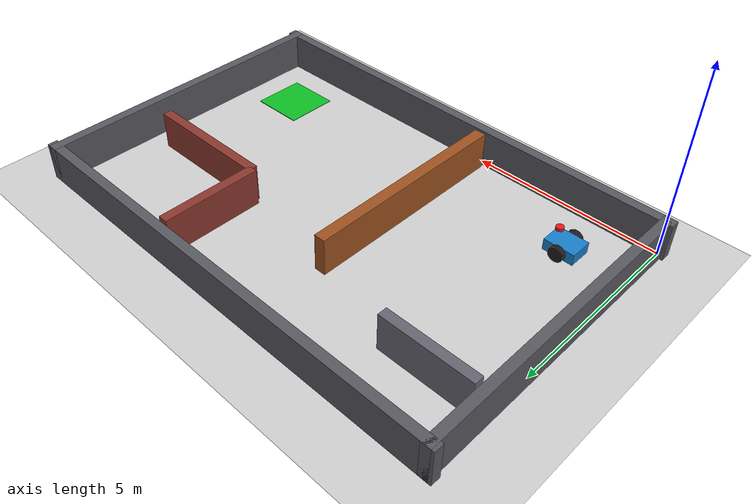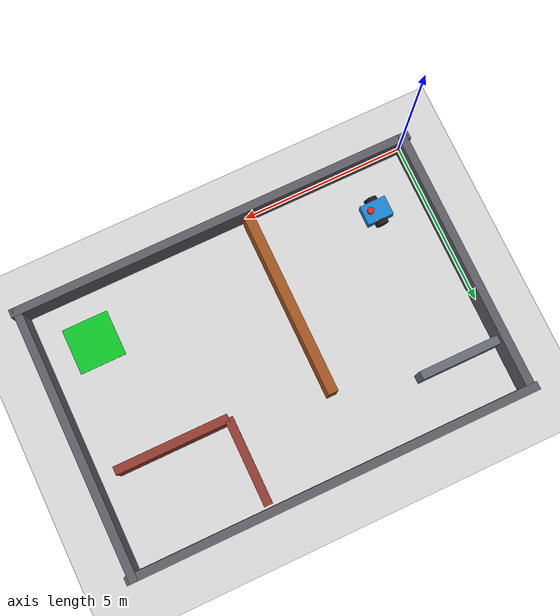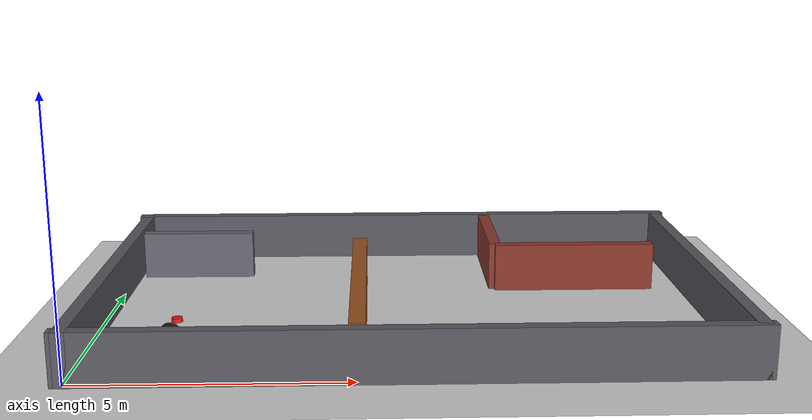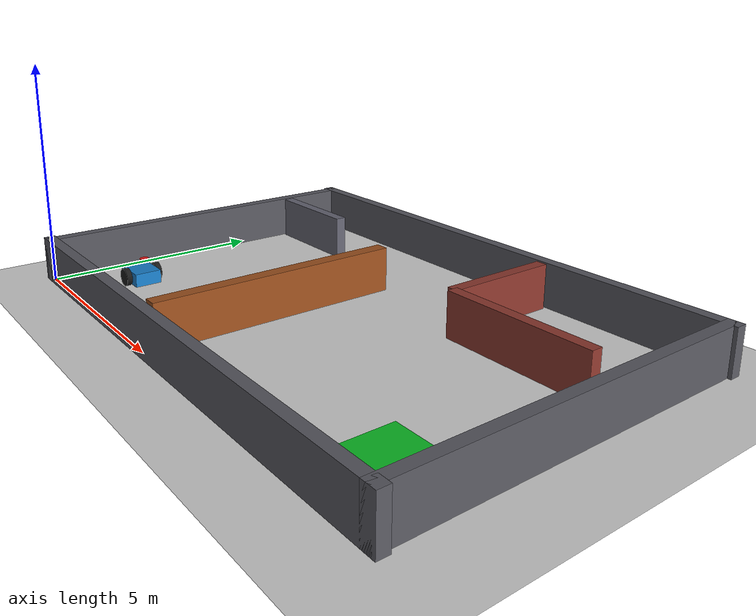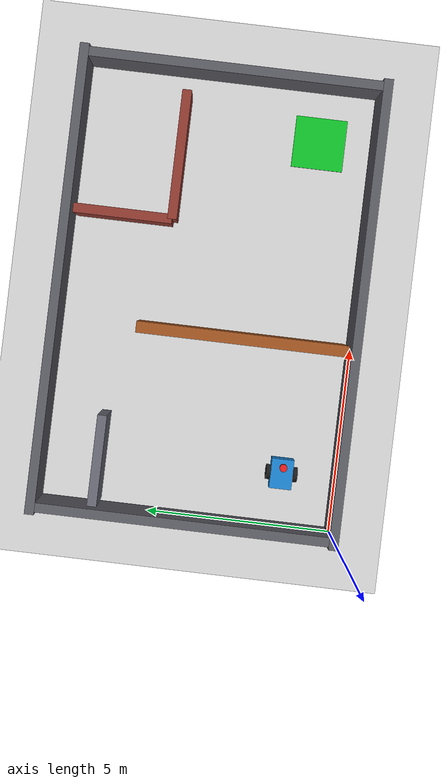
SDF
<?xml version="1.0" ?>
<sdf version="1.9">
  <world name="bug_world">
    <physics name="1ms" type="ignored">
      <max_step_size>0.001</max_step_size>
      <real_time_factor>1.0</real_time_factor>
    </physics>
    <plugin filename="gz-sim-physics-system" name="gz::sim::systems::Physics"/>
    <plugin filename="gz-sim-user-commands-system" name="gz::sim::systems::UserCommands"/>
    <plugin filename="gz-sim-scene-broadcaster-system" name="gz::sim::systems::SceneBroadcaster"/>
    <plugin filename="gz-sim-sensors-system" name="gz::sim::systems::Sensors">
      <render_engine>ogre</render_engine>
    </plugin>

    <scene>
      <ambient>1.0 1.0 1.0 1</ambient>
      <background>0.88 0.88 0.88 1</background>
      <shadows>false</shadows>
    </scene>
    <light type="directional" name="sun">
      <diffuse>1 1 1 1</diffuse>
      <specular>0.2 0.2 0.2 1</specular>
      <direction>-0.5 0.5 -1</direction>
    </light>

    <model name="ground_plane">
      <static>true</static>
      <link name="link">
        <collision name="collision"><geometry><plane><normal>0 0 1</normal><size>30 30</size></plane></geometry></collision>
        <visual name="visual">
          <geometry><plane><normal>0 0 1</normal><size>30 30</size></plane></geometry>
          <material><ambient>0.82 0.82 0.82 1</ambient><diffuse>0.82 0.82 0.82 1</diffuse></material>
        </visual>
      </link>
    </model>

    <!-- Outer building shell (inner free space roughly 0.2..11.8 x 0.2..7.8) -->
    <model name="outer_south">
      <static>true</static><pose>6 0 0.5 0 0 0</pose>
      <link name="link">
        <visual name="v"><geometry><box><size>12.4 0.25 1</size></box></geometry><material><ambient>0.35 0.35 0.38 1</ambient></material></visual>
        <collision name="c"><geometry><box><size>12.4 0.25 1</size></box></geometry></collision>
      </link>
    </model>
    <model name="outer_north">
      <static>true</static><pose>6 8 0.5 0 0 0</pose>
      <link name="link">
        <visual name="v"><geometry><box><size>12.4 0.25 1</size></box></geometry><material><ambient>0.35 0.35 0.38 1</ambient></material></visual>
        <collision name="c"><geometry><box><size>12.4 0.25 1</size></box></geometry></collision>
      </link>
    </model>
    <model name="outer_west">
      <static>true</static><pose>0 4 0.5 0 0 0</pose>
      <link name="link">
        <visual name="v"><geometry><box><size>0.25 8.25 1</size></box></geometry><material><ambient>0.35 0.35 0.38 1</ambient></material></visual>
        <collision name="c"><geometry><box><size>0.25 8.25 1</size></box></geometry></collision>
      </link>
    </model>
    <model name="outer_east">
      <static>true</static><pose>12 4 0.5 0 0 0</pose>
      <link name="link">
        <visual name="v"><geometry><box><size>0.25 8.25 1</size></box></geometry><material><ambient>0.35 0.35 0.38 1</ambient></material></visual>
        <collision name="c"><geometry><box><size>0.25 8.25 1</size></box></geometry></collision>
      </link>
    </model>

    <!-- Main blocking wall on the start-goal line. Gap at the NORTH end only (y > 5.7). -->
    <model name="block_wall">
      <static>true</static><pose>5.0 3.0 0.5 0 0 0</pose>
      <link name="link">
        <visual name="v"><geometry><box><size>0.30 5.6 1</size></box></geometry>
          <material><ambient>0.62 0.32 0.12 1</ambient><diffuse>0.62 0.32 0.12 1</diffuse></material>
        </visual>
        <collision name="c"><geometry><box><size>0.30 5.6 1</size></box></geometry></collision>
      </link>
    </model>

    <!-- Dead-end alcove in the north-east. Following walls will exit it. -->
    <model name="deadend_south">
      <static>true</static><pose>9.6 5.2 0.5 0 0 0</pose>
      <link name="link">
        <visual name="v"><geometry><box><size>3.4 0.25 1</size></box></geometry>
          <material><ambient>0.55 0.22 0.18 1</ambient></material>
        </visual>
        <collision name="c"><geometry><box><size>3.4 0.25 1</size></box></geometry></collision>
      </link>
    </model>
    <model name="deadend_west">
      <static>true</static><pose>7.9 6.5 0.5 0 0 0</pose>
      <link name="link">
        <visual name="v"><geometry><box><size>0.25 2.6 1</size></box></geometry>
          <material><ambient>0.55 0.22 0.18 1</ambient></material>
        </visual>
        <collision name="c"><geometry><box><size>0.25 2.6 1</size></box></geometry></collision>
      </link>
    </model>

    <!-- Dead-end stub on the west. Passage around the main wall stays ~2 m wide. -->
    <model name="west_stub">
      <static>true</static><pose>1.4 6.4 0.5 0 0 0</pose>
      <link name="link">
        <visual name="v"><geometry><box><size>2.4 0.25 1</size></box></geometry>
          <material><ambient>0.40 0.40 0.45 1</ambient></material>
        </visual>
        <collision name="c"><geometry><box><size>2.4 0.25 1</size></box></geometry></collision>
      </link>
    </model>

    <model name="goal_pad">
      <static>true</static><pose>10.5 1.5 0.01 0 0 0</pose>
      <link name="link">
        <visual name="v"><geometry><box><size>1.4 1.4 0.02</size></box></geometry>
          <material><ambient>0.05 0.75 0.15 1</ambient><diffuse>0.05 0.75 0.15 1</diffuse></material>
        </visual>
      </link>
    </model>

    <model name="bug_robot">
      <pose>1.5 1.5 0.25 0 0 0</pose>
      <link name="base_link">
        <inertial><mass>1.0</mass><inertia><ixx>0.035</ixx><iyy>0.078</iyy><izz>0.095</izz></inertia></inertial>
        <collision name="c"><geometry><box><size>0.8 0.6 0.3</size></box></geometry></collision>
        <visual name="v"><geometry><box><size>0.8 0.6 0.3</size></box></geometry>
          <material><ambient>0.1 0.5 0.8 1</ambient><diffuse>0.1 0.5 0.8 1</diffuse></material>
        </visual>
      </link>
      <link name="left_wheel">
        <pose>0 0.36 0.0 0 0 0</pose>
        <inertial><mass>0.15</mass><inertia><ixx>0.003</ixx><iyy>0.003</iyy><izz>0.003</izz></inertia></inertial>
        <collision name="c"><pose>0 0 0 1.5708 0 0</pose><geometry><cylinder><radius>0.20</radius><length>0.12</length></cylinder></geometry>
          <surface><friction><ode><mu>10</mu><mu2>10</mu2></ode></friction></surface>
        </collision>
        <visual name="v"><pose>0 0 0 1.5708 0 0</pose><geometry><cylinder><radius>0.20</radius><length>0.12</length></cylinder></geometry>
          <material><ambient>0.1 0.1 0.1 1</ambient></material>
        </visual>
      </link>
      <link name="right_wheel">
        <pose>0 -0.36 0.0 0 0 0</pose>
        <inertial><mass>0.15</mass><inertia><ixx>0.003</ixx><iyy>0.003</iyy><izz>0.003</izz></inertia></inertial>
        <collision name="c"><pose>0 0 0 1.5708 0 0</pose><geometry><cylinder><radius>0.20</radius><length>0.12</length></cylinder></geometry>
          <surface><friction><ode><mu>10</mu><mu2>10</mu2></ode></friction></surface>
        </collision>
        <visual name="v"><pose>0 0 0 1.5708 0 0</pose><geometry><cylinder><radius>0.20</radius><length>0.12</length></cylinder></geometry>
          <material><ambient>0.1 0.1 0.1 1</ambient></material>
        </visual>
      </link>
      <link name="caster">
        <pose>-0.30 0 -0.12 0 0 0</pose>
        <inertial><mass>0.05</mass><inertia><ixx>0.0002</ixx><iyy>0.0002</iyy><izz>0.0002</izz></inertia></inertial>
        <collision name="c"><geometry><sphere><radius>0.08</radius></sphere></geometry>
          <surface><friction><ode><mu>0.01</mu><mu2>0.01</mu2></ode></friction></surface>
        </collision>
        <visual name="v"><geometry><sphere><radius>0.08</radius></sphere></geometry>
          <material><ambient>0.3 0.3 0.3 1</ambient></material>
        </visual>
      </link>
      <link name="lidar_link">
        <pose>0.22 0 0.40 0 0 0</pose>
        <inertial><mass>0.05</mass><inertia><ixx>0.0001</ixx><iyy>0.0001</iyy><izz>0.0001</izz></inertia></inertial>
        <visual name="lidar_visual"><geometry><cylinder><radius>0.10</radius><length>0.08</length></cylinder></geometry>
          <material><ambient>0.9 0.1 0.1 1</ambient></material>
        </visual>
        <sensor name="lidar" type="gpu_lidar">
          <always_on>true</always_on>
          <visualize>true</visualize>
          <update_rate>8</update_rate>
          <topic>/robot/scan</topic>
          <lidar>
            <scan>
              <horizontal>
                <samples>120</samples>
                <resolution>1</resolution>
                <min_angle>-3.14159</min_angle>
                <max_angle>3.14159</max_angle>
              </horizontal>
            </scan>
            <range><min>0.30</min><max>8.0</max><resolution>0.05</resolution></range>
          </lidar>
        </sensor>
      </link>
      <joint name="lwj" type="revolute"><parent>base_link</parent><child>left_wheel</child><axis><xyz>0 1 0</xyz></axis></joint>
      <joint name="rwj" type="revolute"><parent>base_link</parent><child>right_wheel</child><axis><xyz>0 1 0</xyz></axis></joint>
      <joint name="cj" type="fixed"><parent>base_link</parent><child>caster</child></joint>
      <joint name="lidar_joint" type="fixed"><parent>base_link</parent><child>lidar_link</child></joint>
      <plugin filename="gz-sim-diff-drive-system" name="gz::sim::systems::DiffDrive">
        <left_joint>lwj</left_joint>
        <right_joint>rwj</right_joint>
        <wheel_separation>0.72</wheel_separation>
        <wheel_radius>0.20</wheel_radius>
        <odom_publish_frequency>30</odom_publish_frequency>
        <odom_topic>/robot/odometry</odom_topic>
        <topic>/robot/cmd_vel</topic>
      </plugin>
    </model>
  </world>
</sdf>
